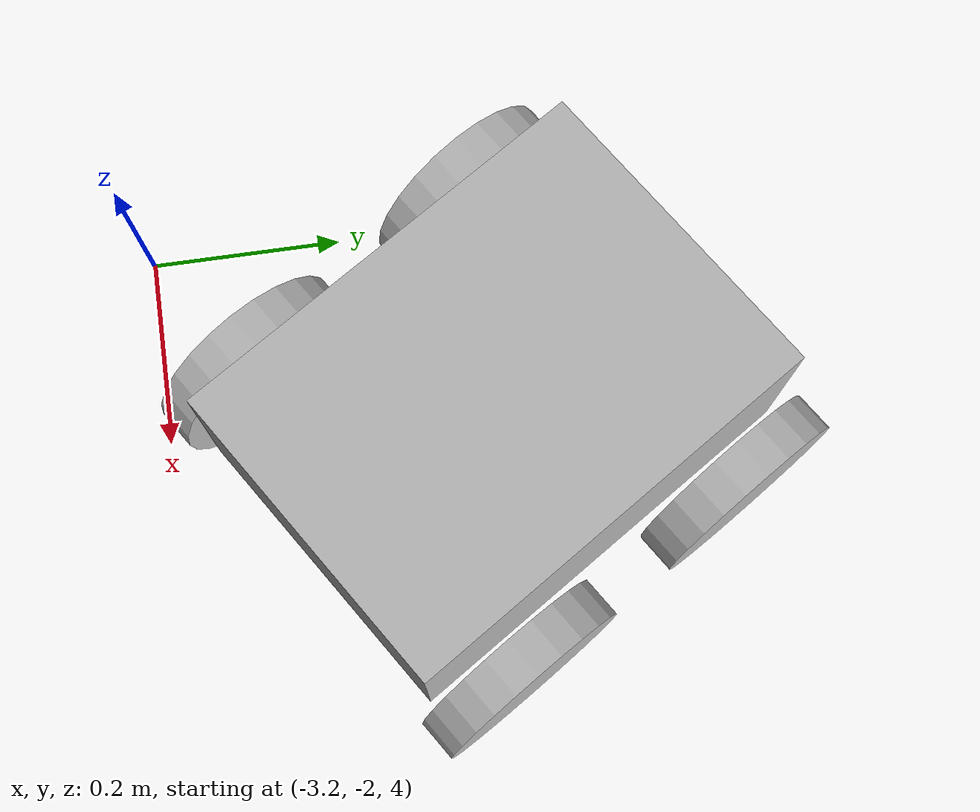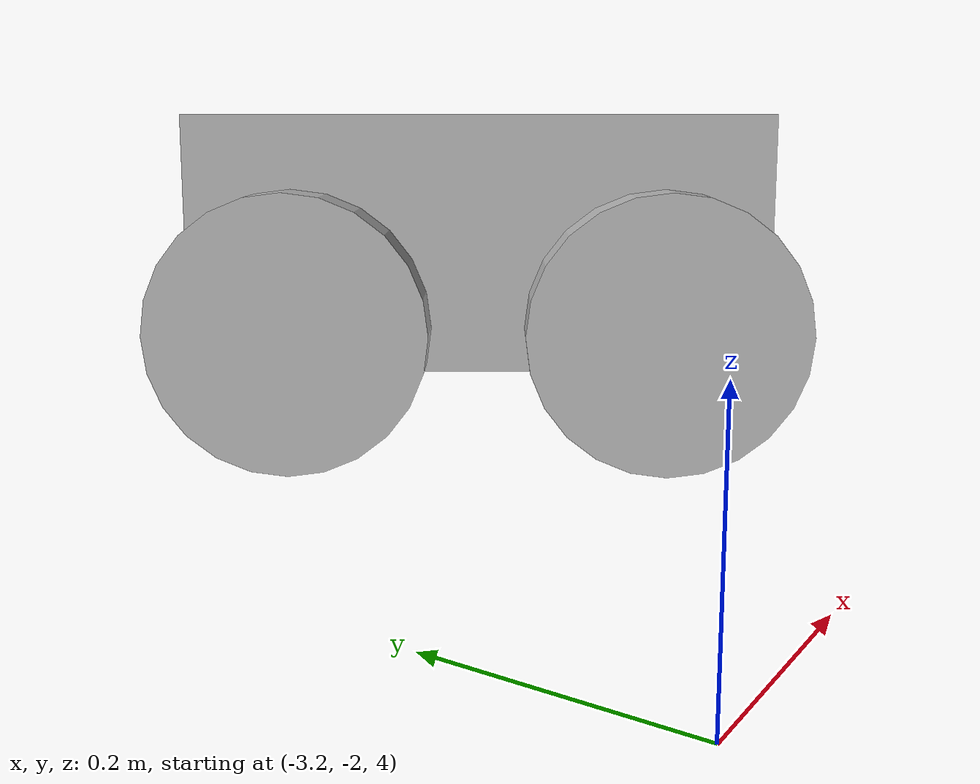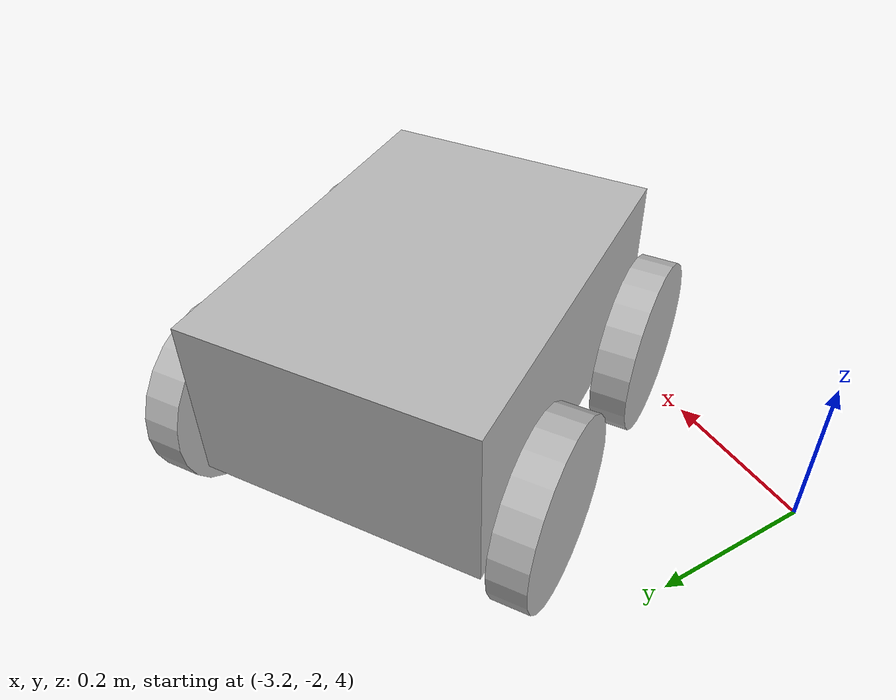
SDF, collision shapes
<?xml version="1.0"?>
<sdf version="1.6">
    <model name="X2">
        <pose>-2.93 -1.67 4.15 0 0 -1</pose>
        <link name="base_link">
            <inertial>
                <pose>0.011999 0.002 0.066996 0 -0 0</pose>
                <mass>16.524</mass>
                <inertia>
                    <ixx>0.320605</ixx>
                    <ixy>-0.000800023</ixy>
                    <ixz>0.0163992</ixz>
                    <iyy>0.399205</iyy>
                    <iyz>-0.000900133</iyz>
                    <izz>0.455501</izz>
                </inertia>
            </inertial>
            <collision name="chassis_collision">
                <pose>0 0 0.092 0 -0 0</pose>
                <geometry>
                    <box>
                        <size>0.42 0.31 0.184</size>
                    </box>
                </geometry>
            </collision>
            <visual name="chassis_visual">
                <pose>0 0 -0.0655 1.5708 0 -1.5708</pose>
                <geometry>
                    <mesh>
                        <uri>model://X2/meshes/x2_chassis.dae</uri>
                    </mesh>
                </geometry>
            </visual>
            <visual name="navsat_visual_1">
                <pose>-0.18 0.126 0.1895 0 -0 0</pose>
                <geometry>
                    <cylinder>
                        <length>0.016</length>
                        <radius>0.026</radius>
                    </cylinder>
                </geometry>
            </visual>
            <visual name="center_left_headlight_visual">
                <pose>0.22 0.05 0.0845 0 -0 -3.14159</pose>
                <geometry>
                    <mesh>
                        <uri>model://X2/meshes/headlight.dae</uri>
                    </mesh>
                </geometry>
            </visual>
            <visual name="left_headlight_visual">
                <pose>0.22 0.145 0.0845 0 -0 -3.14159</pose>
                <geometry>
                    <mesh>
                        <uri>model://X2/meshes/headlight.dae</uri>
                    </mesh>
                </geometry>
            </visual>
            <visual name="center_right_headlight_visual">
                <pose>0.22 -0.05 0.0845 0 -0 -3.14159</pose>
                <geometry>
                    <mesh>
                        <uri>model://X2/meshes/headlight.dae</uri>
                    </mesh>
                </geometry>
            </visual>
            <visual name="right_headlight_visual">
                <pose>0.22 -0.145 0.0845 0 -0 -3.14159</pose>
                <geometry>
                    <mesh>
                        <uri>model://X2/meshes/headlight.dae</uri>
                    </mesh>
                </geometry>
            </visual>

            <light name="left_light_source" type="spot">
                <pose>0.273 0.145 0.141 3.14159 1.56859 0</pose>
                <attenuation>
                    <range>25</range>
                    <linear>0</linear>
                    <constant>0.1</constant>
                    <quadratic>0.005</quadratic>
                </attenuation>
                <diffuse>0.8 0.8 0.5 1</diffuse>
                <specular>0.8 0.8 0.5 1</specular>
                <spot>
                    <inner_angle>1</inner_angle>
                    <outer_angle>1.1</outer_angle>
                    <falloff>1</falloff>
                </spot>
                <direction>0 0 -1</direction>
                <cast_shadows>1</cast_shadows>
                <visualize>false</visualize>
            </light>

            <light name="right_light_source" type="spot">
                <pose>0.273 -0.145 0.141 3.14159 1.56859 0</pose>
                <attenuation>
                    <range>25</range>
                    <linear>0</linear>
                    <constant>0.1</constant>
                    <quadratic>0.005</quadratic>
                </attenuation>
                <diffuse>0.8 0.8 0.5 1</diffuse>
                <specular>0.8 0.8 0.5 1</specular>
                <spot>
                    <inner_angle>1</inner_angle>
                    <outer_angle>1.1</outer_angle>
                    <falloff>1</falloff>
                </spot>
                <direction>0 0 -1</direction>
                <cast_shadows>1</cast_shadows>
                <visualize>false</visualize>
            </light>

            <light name="center_left_light_source" type="spot">
                <pose>0.273 0.05 0.141 3.14159 1.56859 0</pose>
                <attenuation>
                    <range>25</range>
                    <linear>0</linear>
                    <constant>0.1</constant>
                    <quadratic>0.005</quadratic>
                </attenuation>
                <diffuse>0.8 0.8 0.5 1</diffuse>
                <specular>0.8 0.8 0.5 1</specular>
                <spot>
                    <inner_angle>1</inner_angle>
                    <outer_angle>1.1</outer_angle>
                    <falloff>1</falloff>
                </spot>
                <direction>0 0 -1</direction>
                <cast_shadows>1</cast_shadows>
                <visualize>false</visualize>
            </light>

            <light name="center_right_light_source" type="spot">
                <pose>0.273 -0.05 0.141 3.14159 1.56859 0</pose>
                <attenuation>
                    <range>25</range>
                    <linear>0</linear>
                    <constant>0.1</constant>
                    <quadratic>0.005</quadratic>
                </attenuation>
                <diffuse>0.8 0.8 0.5 1</diffuse>
                <specular>0.8 0.8 0.5 1</specular>
                <spot>
                    <inner_angle>1</inner_angle>
                    <outer_angle>1.1</outer_angle>
                    <falloff>1</falloff>
                </spot>
                <direction>0 0 -1</direction>
                <cast_shadows>1</cast_shadows>
                <visualize>false</visualize>
            </light>

            <sensor name="imu_sensor" type="imu">
                <always_on>1</always_on>
                <update_rate>50</update_rate>
                <imu>
                    <enable_orientation>0</enable_orientation>
                    <angular_velocity>
                        <x>
                            <noise type="gaussian">
                                <mean>0</mean>
                                <stddev>0.009</stddev>
                                <bias_mean>0.00075</bias_mean>
                                <bias_stddev>0.005</bias_stddev>
                                <dynamic_bias_stddev>0.00002</dynamic_bias_stddev>
				<dynamic_bias_correlation_time>400.0</dynamic_bias_correlation_time>
				<precision>0.00025</precision>
                            </noise>
                        </x>
                        <y>
                            <noise type="gaussian">
                                <mean>0</mean>
                                <stddev>0.009</stddev>
                                <bias_mean>0.00075</bias_mean>
                                <bias_stddev>0.005</bias_stddev>
                                <dynamic_bias_stddev>0.00002</dynamic_bias_stddev>
				<dynamic_bias_correlation_time>400.0</dynamic_bias_correlation_time>
				<precision>0.00025</precision>
                            </noise>
                        </y>
                        <z>
                            <noise type="gaussian">
                                <mean>0</mean>
                                <stddev>0.009</stddev>
                                <bias_mean>0.00075</bias_mean>
                                <bias_stddev>0.005</bias_stddev>
                                <dynamic_bias_stddev>0.00002</dynamic_bias_stddev>
				<dynamic_bias_correlation_time>400.0</dynamic_bias_correlation_time>
				<precision>0.00025</precision>
                            </noise>
                        </z>
                    </angular_velocity>
                    <linear_acceleration>
                        <x>
                            <noise type="gaussian">
                                <mean>0</mean>
                                <stddev>0.021</stddev>
                                <bias_mean>0.05</bias_mean>
                                <bias_stddev>0.0075</bias_stddev>
                                <dynamic_bias_stddev>0.000375</dynamic_bias_stddev>
				<dynamic_bias_correlation_time>175.0</dynamic_bias_correlation_time>
				<precision>0.005</precision>
                            </noise>
                        </x>
                        <y>
                            <noise type="gaussian">
                                <mean>0</mean>
                                <stddev>0.021</stddev>
                                <bias_mean>0.05</bias_mean>
                                <bias_stddev>0.0075</bias_stddev>
                                <dynamic_bias_stddev>0.000375</dynamic_bias_stddev>
				<dynamic_bias_correlation_time>175.0</dynamic_bias_correlation_time>
				<precision>0.005</precision>
                            </noise>
                        </y>
                        <z>
                            <noise type="gaussian">
                                <mean>0</mean>
                                <stddev>0.021</stddev>
                                <bias_mean>0.05</bias_mean>
                                <bias_stddev>0.0075</bias_stddev>
                                <dynamic_bias_stddev>0.000375</dynamic_bias_stddev>
				<dynamic_bias_correlation_time>175.0</dynamic_bias_correlation_time>
				<precision>0.005</precision>
                            </noise>
                        </z>
                    </linear_acceleration>
                </imu>
            </sensor>

            <visual name="camera_visual">
                <pose>0.23 0 0.19 0 0 0</pose>
                <geometry>
                    <box>
                        <size>0.02 0.02 0.02</size>
                    </box>
                </geometry>
            </visual>
            <sensor name="camera_front" type="camera">
                <pose>0.23 0 0.19 0 0 0</pose>
                <always_on>1</always_on>
                <update_rate>20</update_rate>
                <camera name="camera_front">
                    <pose frame="">0 0 0 0 -1.5707 1.5707</pose>
                    <horizontal_fov>1.0472</horizontal_fov>
                    <lens>
                        <intrinsics>
                          <!-- fx = fy = width / ( 2 * tan (hfov / 2 ) ) -->
                          <fx>277.1</fx>
                          <fy>277.1</fy>
                          <!-- cx = ( width + 1 ) / 2 -->
                          <cx>160.5</cx>
                          <!-- cy = ( height + 1 ) / 2 -->
                          <cy>120.5</cy>
                          <s>0</s>
                        </intrinsics>
                    </lens>
                    <distortion>
                        <k1>0.0</k1>
                        <k2>0.0</k2>
                        <k3>0.0</k3>
                        <p1>0.0</p1>
                        <p2>0.0</p2>
                        <center>0.5 0.5</center>
                    </distortion>
                    <image>
                        <width>320</width>
                        <height>240</height>
                        <format>R8G8B8</format>
                    </image>
                    <clip>
                        <near>0.01</near>
                        <far>300</far>
                    </clip>
                    <noise>
                        <type>gaussian</type>
                        <mean>0</mean>
                        <stddev>0.007</stddev>
                    </noise>
                </camera>
            </sensor>
            <visual name="laser_visual">
                <pose>0.0 0 0.23 0 -0 0</pose>
                <geometry>
                    <cylinder>
                        <radius>0.03</radius>
                        <length>0.1</length>
                    </cylinder>
                </geometry>
            </visual>
            <sensor name="front_laser" type="gpu_ray">
                <pose>0.0 0 0.23 0 -0 0</pose>
                <update_rate>20</update_rate>
                <lidar>
                    <scan>
                        <horizontal>
                            <samples>720</samples>
                            <resolution>1</resolution>
                            <min_angle>-2.3562</min_angle>
                            <max_angle>2.3562</max_angle>
                        </horizontal>
                    </scan>
                    <range>
                        <min>0.04</min>
                        <max>5</max>
                        <resolution>0.01</resolution>
                    </range>
                    <noise>
                        <type>gaussian</type>
                        <mean>0</mean>
                        <stddev>0.01</stddev>
                    </noise>
                </lidar>
            </sensor>
        </link>

        <link name="front_left_wheel">
            <pose>0.131 0.187795 0.0345 0 -0 0</pose>
            <inertial>
                <mass>0.477</mass>
                <inertia>
                    <ixx>0.0013</ixx>
                    <ixy>0</ixy>
                    <ixz>0</ixz>
                    <iyy>0.0024</iyy>
                    <iyz>0</iyz>
                    <izz>0.0013</izz>
                </inertia>
            </inertial>
            <collision name="collision">
                <pose>0 0 0 1.5707963267948966 -0 0</pose>
                <geometry>
                    <cylinder>
                        <length>0.04</length>
                        <radius>0.098</radius>
                    </cylinder>
                </geometry>
                <surface>
                    <friction>
                        <ode>
                            <mu>1</mu>
                            <mu2>1</mu2>
                            <slip1>0.0026</slip1>
                            <slip2>0</slip2>
                            <fdir1>0 0 1</fdir1>
                        </ode>
                    </friction>
                </surface>
            </collision>
            <visual name="visual">
                <pose>0 0 0 1.5708 -0 0</pose>
                <geometry>
                    <mesh>
                        <uri>model://X2/meshes/x2_wheel_left.dae</uri>
                    </mesh>
                </geometry>
            </visual>
        </link>

        <link name="front_right_wheel">
            <pose>0.131 -0.187795 0.0345 0 -0 0</pose>
            <inertial>
                <mass>0.477</mass>
                <inertia>
                    <ixx>0.0013</ixx>
                    <ixy>0</ixy>
                    <ixz>0</ixz>
                    <iyy>0.0024</iyy>
                    <iyz>0</iyz>
                    <izz>0.0013</izz>
                </inertia>
            </inertial>
            <collision name="collision">
                <pose>0 0 0 1.5707963267948966 -0 0</pose>
                <geometry>
                    <cylinder>
                        <length>0.04</length>
                        <radius>0.098</radius>
                    </cylinder>
                </geometry>
                <surface>
                    <friction>
                        <ode>
                            <mu>1</mu>
                            <mu2>1</mu2>
                            <slip1>0.0026</slip1>
                            <slip2>0</slip2>
                            <fdir1>0 0 1</fdir1>
                        </ode>
                    </friction>
                </surface>
            </collision>
            <visual name="visual">
                <pose>0 0 0 1.5708 -0 0</pose>
                <geometry>
                    <mesh>
                        <uri>model://X2/meshes/x2_wheel_right.dae</uri>
                    </mesh>
                </geometry>
            </visual>
        </link>

        <link name="rear_left_wheel">
            <pose>-0.131 0.187795 0.0345 0 -0 0</pose>
            <inertial>
                <mass>0.477</mass>
                <inertia>
                    <ixx>0.0013</ixx>
                    <ixy>0</ixy>
                    <ixz>0</ixz>
                    <iyy>0.0024</iyy>
                    <iyz>0</iyz>
                    <izz>0.0013</izz>
                </inertia>
            </inertial>
            <collision name="collision">
                <pose>0 0 0 1.5707963267948966 -0 0</pose>
                <geometry>
                    <cylinder>
                        <length>0.04</length>
                        <radius>0.098</radius>
                    </cylinder>
                </geometry>
                <surface>
                    <friction>
                        <ode>
                            <mu>1</mu>
                            <mu2>1</mu2>
                            <slip1>0.0026</slip1>
                            <slip2>0</slip2>
                            <fdir1>0 0 1</fdir1>
                        </ode>
                    </friction>
                </surface>
            </collision>
            <visual name="visual">
                <pose>0 0 0 1.5708 -0 0</pose>
                <geometry>
                    <mesh>
                        <uri>model://X2/meshes/x2_wheel_left.dae</uri>
                    </mesh>
                </geometry>
            </visual>
        </link>

        <link name="rear_right_wheel">
            <pose>-0.131 -0.187795 0.0345 0 -0 0</pose>
            <inertial>
                <mass>0.477</mass>
                <inertia>
                    <ixx>0.0013</ixx>
                    <ixy>0</ixy>
                    <ixz>0</ixz>
                    <iyy>0.0024</iyy>
                    <iyz>0</iyz>
                    <izz>0.0013</izz>
                </inertia>
            </inertial>
            <collision name="collision">
                <pose>0 0 0 1.5707963267948966 -0 0</pose>
                <geometry>
                    <cylinder>
                        <length>0.04</length>
                        <radius>0.098</radius>
                    </cylinder>
                </geometry>
                <surface>
                    <friction>
                        <ode>
                            <mu>1</mu>
                            <mu2>1</mu2>
                            <slip1>0.0026</slip1>
                            <slip2>0</slip2>
                            <fdir1>0 0 1</fdir1>
                        </ode>
                    </friction>
                </surface>
            </collision>
            <visual name="visual">
                <pose>0 0 0 1.5708 -0 0</pose>
                <geometry>
                    <mesh>
                        <uri>model://X2/meshes/x2_wheel_right.dae</uri>
                    </mesh>
                </geometry>
            </visual>
        </link>

        <joint name="front_left_wheel_joint" type="revolute">
            <child>front_left_wheel</child>
            <parent>base_link</parent>
            <axis>
                <xyz>0 1 0</xyz>
                <limit>
                    <lower>-1e+16</lower>
                    <upper>1e+16</upper>
                </limit>
                <use_parent_model_frame>1</use_parent_model_frame>
            </axis>
        </joint>

        <joint name="rear_left_wheel_joint" type="revolute">
            <parent>base_link</parent>
            <child>rear_left_wheel</child>
            <axis>
                <xyz>0 1 0</xyz>
                <limit>
                    <lower>-1.79769e+308</lower>
                    <upper>+1.79769e+308</upper>
                </limit>
            </axis>
        </joint>

        <joint name="rear_right_wheel_joint" type="revolute">
            <parent>base_link</parent>
            <child>rear_right_wheel</child>
            <axis>
                <xyz>0 1 0</xyz>
                <limit>
                    <lower>-1.79769e+308</lower>
                    <upper>+1.79769e+308</upper>
                </limit>
            </axis>
        </joint>

        <joint name="front_right_wheel_joint" type="revolute">
            <parent>base_link</parent>
            <child>front_right_wheel</child>
            <axis>
                <xyz>0 1 0</xyz>
                <limit>
                    <lower>-1.79769e+308</lower>
                    <upper>+1.79769e+308</upper>
                </limit>
            </axis>
        </joint>

      <plugin
        filename="gz-sim-diff-drive-system"
        name="gz::sim::systems::DiffDrive">
        <left_joint>front_left_wheel_joint</left_joint>
        <right_joint>front_right_wheel_joint</right_joint>
        <wheel_separation>0.37559</wheel_separation>
        <wheel_radius>0.098</wheel_radius>
        <max_linear_acceleration>1</max_linear_acceleration>
        <min_linear_acceleration>-1</min_linear_acceleration>
        <max_angular_acceleration>2</max_angular_acceleration>
        <min_angular_acceleration>-2</min_angular_acceleration>
        <max_linear_velocity>0.5</max_linear_velocity>
        <min_linear_velocity>-0.5</min_linear_velocity>
        <max_angular_velocity>1</max_angular_velocity>
        <min_angular_velocity>-1</min_angular_velocity>
      </plugin>

      <plugin name='gz::sim::systems::OdometryPublisher' filename='gz-sim-odometry-publisher-system'>
        <dimensions>3</dimensions>
        <odom_publish_frequency>10.0</odom_publish_frequency>
        <odom_frame>odom</odom_frame>
        <robot_base_frame>X2</robot_base_frame>
      </plugin>

        <plugin name='gz::sim::systems::PosePublisher' filename='libgz-sim-pose-publisher-system.so'>
            <publish_link_pose>true</publish_link_pose>
            <publish_sensor_pose>true</publish_sensor_pose>
            <publish_collision_pose>false</publish_collision_pose>
            <publish_visual_pose>false</publish_visual_pose>
            <publish_nested_model_pose>false</publish_nested_model_pose>
            <publish_model_pose>false</publish_model_pose>
            <use_pose_vector_msg>true</use_pose_vector_msg>
            <static_publisher>false</static_publisher>
            <static_update_frequency>30</static_update_frequency>
        </plugin>

    </model>
</sdf>
